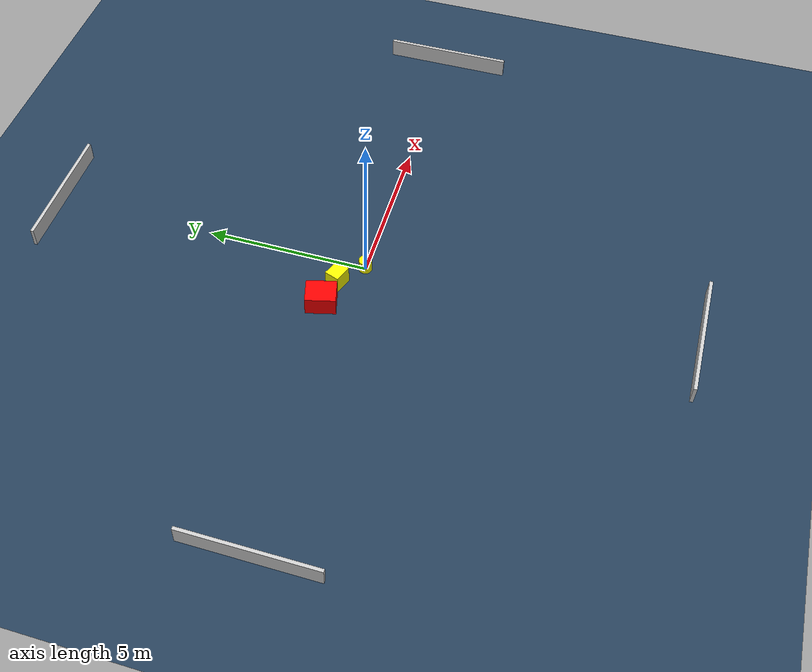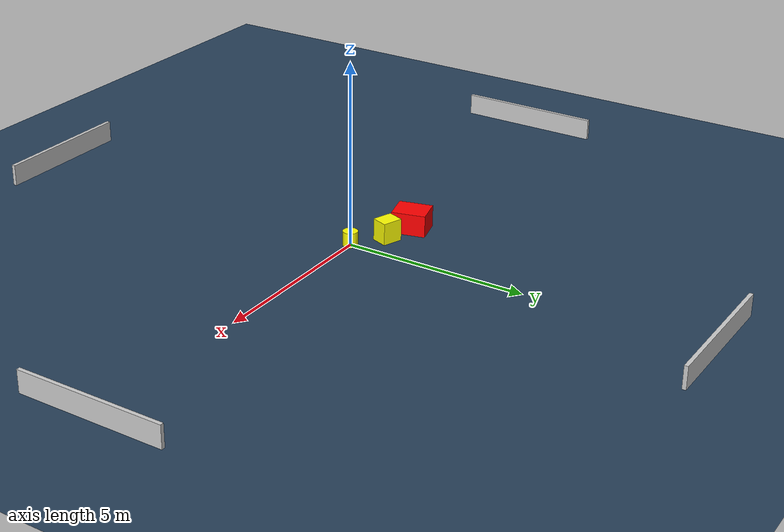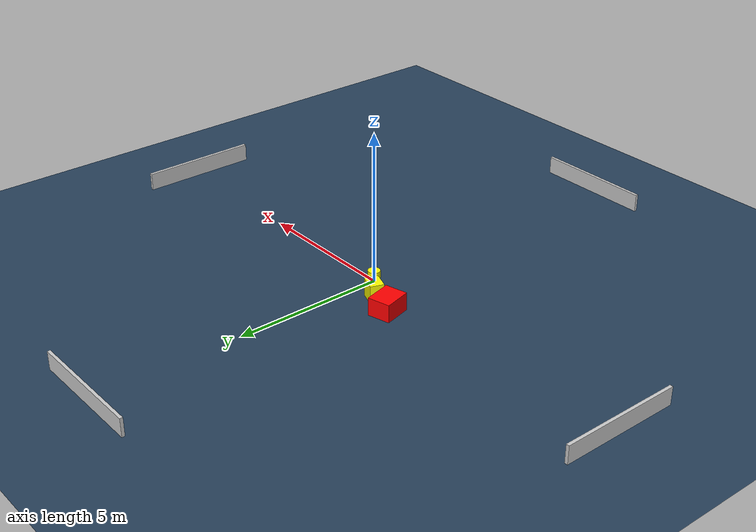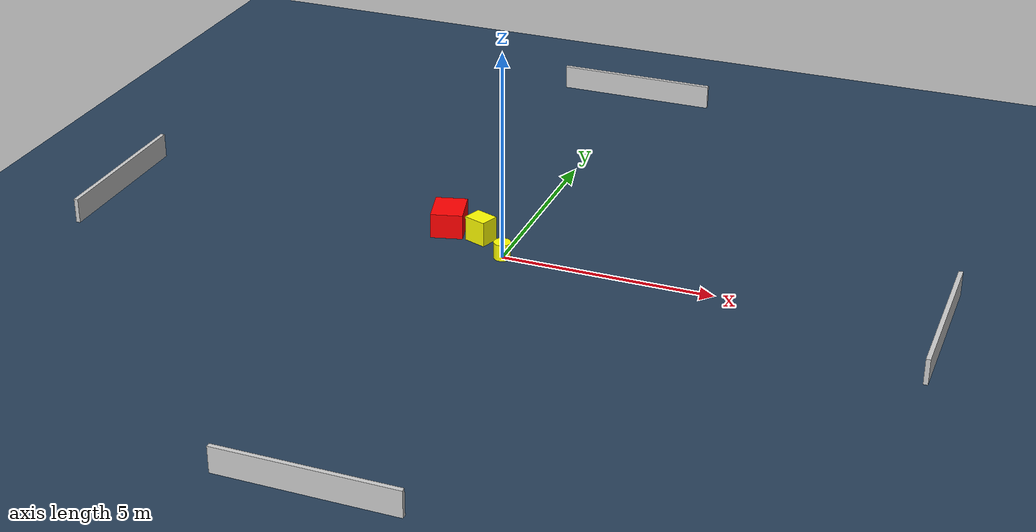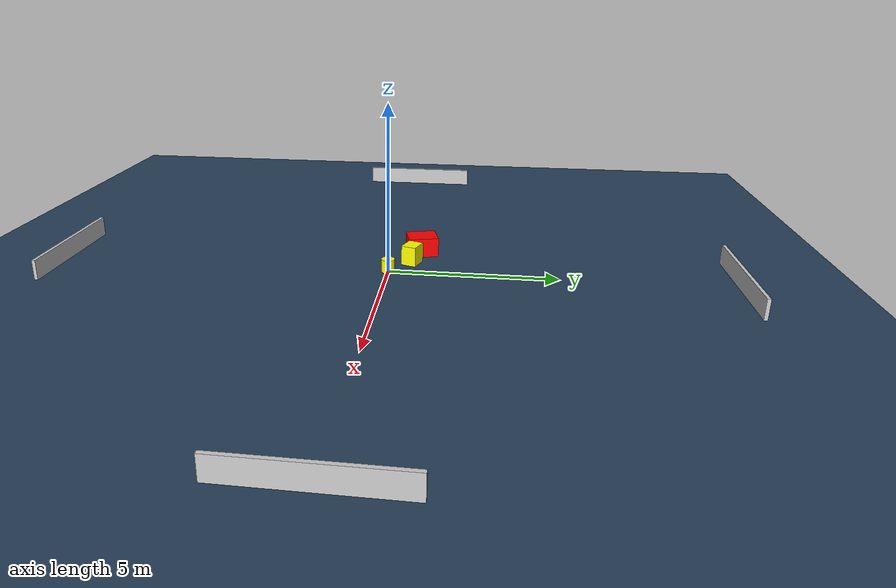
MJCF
<?xml version="1.0" ?>
<mujoco model="generated_environment">
  <option timestep="0.01" integrator="RK4" cone="elliptic"/>
  <default>
    <geom density="1"/>
  </default>
  <asset>
    <texture builtin="gradient" height="3072" name="skybox" rgb1="0.3 0.5 0.7" rgb2="0 0 0" type="skybox" width="512"/>
    <texture builtin="checker" height="300" name="groundplane" rgb1="0.2 0.3 0.4" rgb2="0.1 0.2 0.3" type="2d" width="300"/>
    <material name="groundplane" reflectance="0.2" texrepeat="5 5" texture="groundplane"/>
  </asset>
  <worldbody>
    <light dir="0 0 -1" directional="true" pos="0 0 1.5"/>
    <geom condim="3" friction="0.5 0.005 0.001" material="groundplane" name="floor" pos="0 0 0" size="0 0 0.05" type="plane"/>
    <body name="walls">
      <geom name="wall_1" condim="4" pos="-10.0 0.0 0.3" rgba="0.800000011920929 0.800000011920929 0.800000011920929 1.0" size="0.05 2.0 0.3" type="box"/>
      <geom name="wall_2" condim="4" pos="10.0 0.0 0.3" rgba="0.800000011920929 0.800000011920929 0.800000011920929 1.0" size="0.05 2.0 0.3" type="box"/>
      <geom name="wall_3" condim="4" pos="0.0 -10.0 0.3" rgba="0.800000011920929 0.800000011920929 0.800000011920929 1.0" size="2.0 0.05 0.3" type="box"/>
      <geom name="wall_4" condim="4" pos="0.0 10.0 0.3" rgba="0.800000011920929 0.800000011920929 0.800000011920929 1.0" size="2.0 0.05 0.3" type="box"/>
    </body>
    <body name="robot">
      <joint name="joint_x" type="slide" pos="0 0 0" axis="1 0 0"/>
      <joint name="joint_y" type="slide" pos="0 0 0" axis="0 1 0"/>
      <geom name="robot" type="cylinder" pos="0.0 0.0 0.2" size="0.2 0.2 0.0" mass="5.0" friction="1.0 0.005 0.0001" condim="4" rgba="1.0 1.0 0.0 1.0"/>
    </body>
    <body name="obstacle_1_movable">
      <geom name="obstacle_1_movable" condim="4" pos="-0.7830183087301701 0.6384401990811827 0.3" euler="0 0 70.20853504515318" friction="0.0 0.005 0.001" rgba="1.0 1.0 0.0 1.0" size="0.22624308681688576 0.27831934288931515 0.3" type="box" mass="0.1"/>
      <joint type="free"/>
    </body>
    <body name="obstacle_2_static">
      <geom name="obstacle_2_static" condim="4" pos="-1.6669902853905672 0.8538644327234425 0.3" euler="0 0 194.5265141586214" friction="0.0 0.005 0.001" rgba="1.0 0.0 0.0 1.0" size="0.37824594830337355 0.45837606643206547 0.3" type="box"/>
    </body>
  </worldbody>
  <actuator>
    <motor name="actuator_x" joint="joint_x" gear="1" ctrlrange="-1 1"/>
    <motor name="actuator_y" joint="joint_y" gear="1" ctrlrange="-1 1"/>
  </actuator>
</mujoco>
